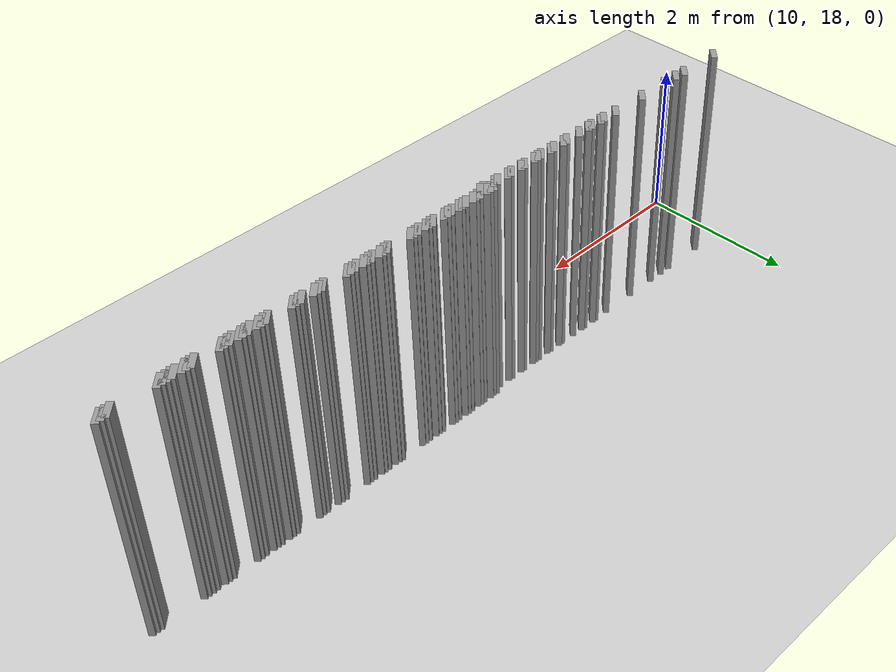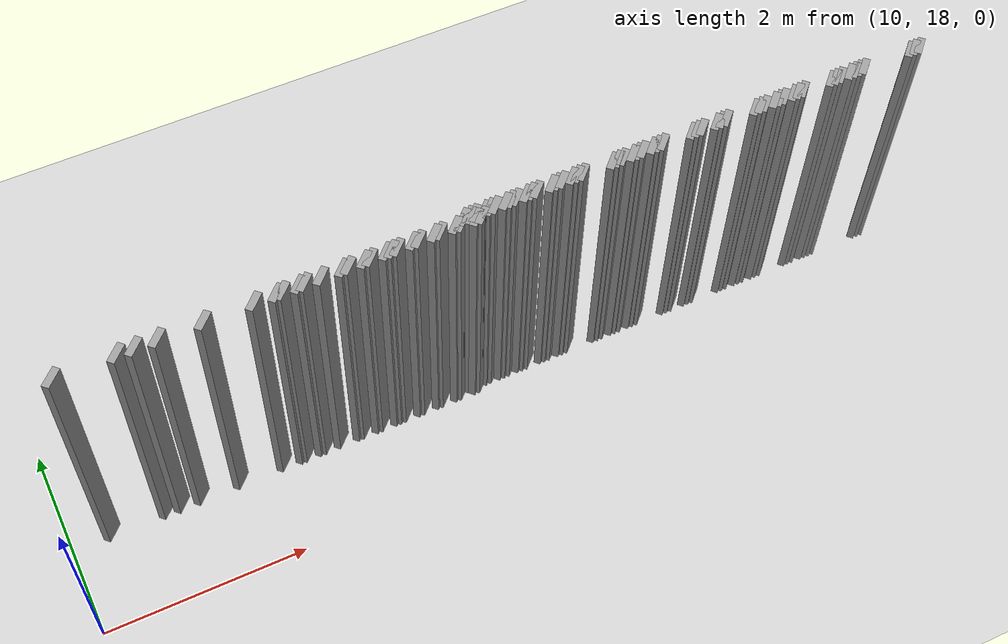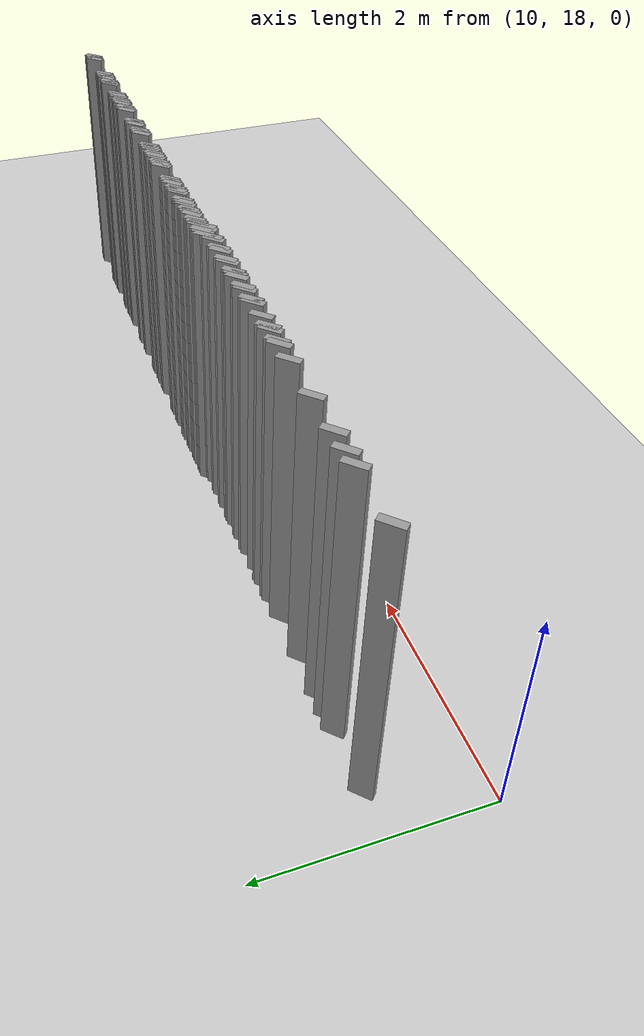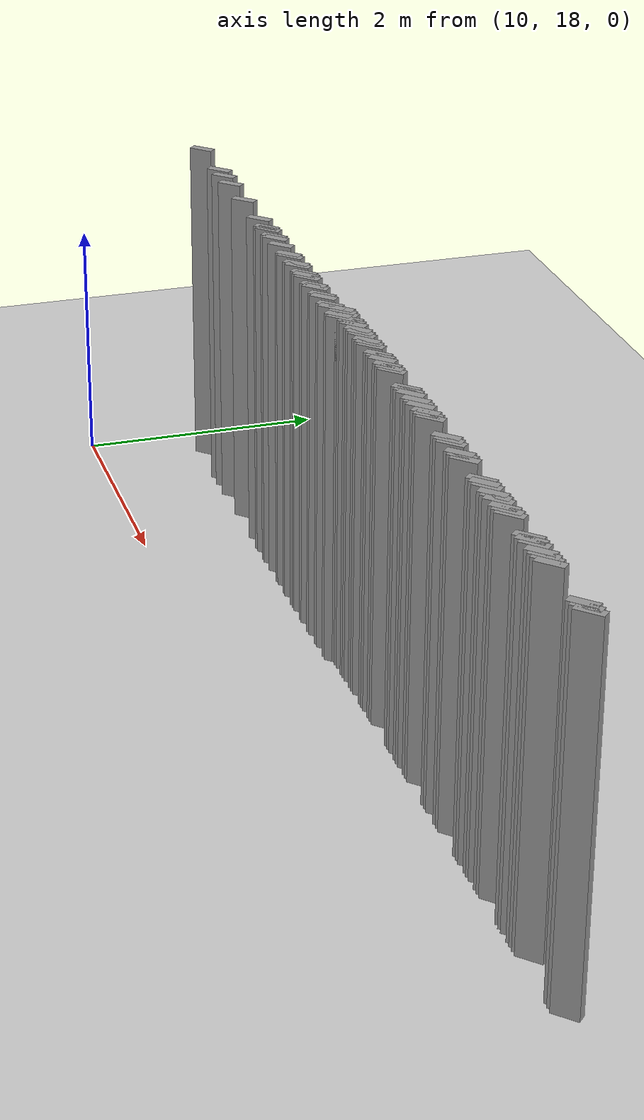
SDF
<sdf version="1.5">
 <world name="default">
  <include><uri>model://ground_plane</uri></include>
  <include><uri>model://sun</uri></include>
  <model name="grey_wall_79">
   <static>1</static>
   <link name="link">
    <pose>14.1 19.0  1.4 0 0 -0.785398163397</pose>
    <collision name="collision"><geometry><box><size>0.0707106781187 .2  2.8</size></box></geometry></collision>
    <visual name="visual">
     <cast_shadows>0</cast_shadows>
     <geometry><box><size>0.0707106781187 .2  2.8</size></box></geometry>
     <material>
      <script>
       <uri>model://grey_wall/materials/scripts</uri>
       <uri>model://grey_wall/materials/textures</uri>
       <name>vrc/grey_wall</name>
      </script>
     </material>
    </visual>
   </link>
  </model>
  <model name="grey_wall_80">
   <static>1</static>
   <link name="link">
    <pose>14.15 19.0  1.4 0 0 -0.785398163397</pose>
    <collision name="collision"><geometry><box><size>0.0707106781187 .2  2.8</size></box></geometry></collision>
    <visual name="visual">
     <cast_shadows>0</cast_shadows>
     <geometry><box><size>0.0707106781187 .2  2.8</size></box></geometry>
     <material>
      <script>
       <uri>model://grey_wall/materials/scripts</uri>
       <uri>model://grey_wall/materials/textures</uri>
       <name>vrc/grey_wall</name>
      </script>
     </material>
    </visual>
   </link>
  </model>
  <model name="grey_wall_81">
   <static>1</static>
   <link name="link">
    <pose>14.2 19.0  1.4 0 0 -0.785398163397</pose>
    <collision name="collision"><geometry><box><size>0.0707106781187 .2  2.8</size></box></geometry></collision>
    <visual name="visual">
     <cast_shadows>0</cast_shadows>
     <geometry><box><size>0.0707106781187 .2  2.8</size></box></geometry>
     <material>
      <script>
       <uri>model://grey_wall/materials/scripts</uri>
       <uri>model://grey_wall/materials/textures</uri>
       <name>vrc/grey_wall</name>
      </script>
     </material>
    </visual>
   </link>
  </model>
  <model name="grey_wall_82">
   <static>1</static>
   <link name="link">
    <pose>14.3 19.0  1.4 0 0 -0.785398163397</pose>
    <collision name="collision"><geometry><box><size>0.0707106781187 .2  2.8</size></box></geometry></collision>
    <visual name="visual">
     <cast_shadows>0</cast_shadows>
     <geometry><box><size>0.0707106781187 .2  2.8</size></box></geometry>
     <material>
      <script>
       <uri>model://grey_wall/materials/scripts</uri>
       <uri>model://grey_wall/materials/textures</uri>
       <name>vrc/grey_wall</name>
      </script>
     </material>
    </visual>
   </link>
  </model>
  <model name="grey_wall_83">
   <static>1</static>
   <link name="link">
    <pose>14.35 19.0  1.4 0 0 -0.785398163397</pose>
    <collision name="collision"><geometry><box><size>0.0707106781187 .2  2.8</size></box></geometry></collision>
    <visual name="visual">
     <cast_shadows>0</cast_shadows>
     <geometry><box><size>0.0707106781187 .2  2.8</size></box></geometry>
     <material>
      <script>
       <uri>model://grey_wall/materials/scripts</uri>
       <uri>model://grey_wall/materials/textures</uri>
       <name>vrc/grey_wall</name>
      </script>
     </material>
    </visual>
   </link>
  </model>
  <model name="grey_wall_84">
   <static>1</static>
   <link name="link">
    <pose>14.4 19.0  1.4 0 0 -0.785398163397</pose>
    <collision name="collision"><geometry><box><size>0.0707106781187 .2  2.8</size></box></geometry></collision>
    <visual name="visual">
     <cast_shadows>0</cast_shadows>
     <geometry><box><size>0.0707106781187 .2  2.8</size></box></geometry>
     <material>
      <script>
       <uri>model://grey_wall/materials/scripts</uri>
       <uri>model://grey_wall/materials/textures</uri>
       <name>vrc/grey_wall</name>
      </script>
     </material>
    </visual>
   </link>
  </model>
  <model name="grey_wall_85">
   <static>1</static>
   <link name="link">
    <pose>14.5 19.0  1.4 0 0 -0.785398163397</pose>
    <collision name="collision"><geometry><box><size>0.0707106781187 .2  2.8</size></box></geometry></collision>
    <visual name="visual">
     <cast_shadows>0</cast_shadows>
     <geometry><box><size>0.0707106781187 .2  2.8</size></box></geometry>
     <material>
      <script>
       <uri>model://grey_wall/materials/scripts</uri>
       <uri>model://grey_wall/materials/textures</uri>
       <name>vrc/grey_wall</name>
      </script>
     </material>
    </visual>
   </link>
  </model>
  <model name="grey_wall_86">
   <static>1</static>
   <link name="link">
    <pose>14.55 19.0  1.4 0 0 -0.785398163397</pose>
    <collision name="collision"><geometry><box><size>0.0707106781187 .2  2.8</size></box></geometry></collision>
    <visual name="visual">
     <cast_shadows>0</cast_shadows>
     <geometry><box><size>0.0707106781187 .2  2.8</size></box></geometry>
     <material>
      <script>
       <uri>model://grey_wall/materials/scripts</uri>
       <uri>model://grey_wall/materials/textures</uri>
       <name>vrc/grey_wall</name>
      </script>
     </material>
    </visual>
   </link>
  </model>
  <model name="grey_wall_87">
   <static>1</static>
   <link name="link">
    <pose>14.6 19.0  1.4 0 0 -0.785398163397</pose>
    <collision name="collision"><geometry><box><size>0.0707106781187 .2  2.8</size></box></geometry></collision>
    <visual name="visual">
     <cast_shadows>0</cast_shadows>
     <geometry><box><size>0.0707106781187 .2  2.8</size></box></geometry>
     <material>
      <script>
       <uri>model://grey_wall/materials/scripts</uri>
       <uri>model://grey_wall/materials/textures</uri>
       <name>vrc/grey_wall</name>
      </script>
     </material>
    </visual>
   </link>
  </model>
  <model name="grey_wall_88">
   <static>1</static>
   <link name="link">
    <pose>14.7 19.0  1.4 0 0 -0.785398163397</pose>
    <collision name="collision"><geometry><box><size>0.0707106781187 .2  2.8</size></box></geometry></collision>
    <visual name="visual">
     <cast_shadows>0</cast_shadows>
     <geometry><box><size>0.0707106781187 .2  2.8</size></box></geometry>
     <material>
      <script>
       <uri>model://grey_wall/materials/scripts</uri>
       <uri>model://grey_wall/materials/textures</uri>
       <name>vrc/grey_wall</name>
      </script>
     </material>
    </visual>
   </link>
  </model>
  <model name="grey_wall_89">
   <static>1</static>
   <link name="link">
    <pose>14.75 19.0  1.4 0 0 -0.785398163397</pose>
    <collision name="collision"><geometry><box><size>0.0707106781187 .2  2.8</size></box></geometry></collision>
    <visual name="visual">
     <cast_shadows>0</cast_shadows>
     <geometry><box><size>0.0707106781187 .2  2.8</size></box></geometry>
     <material>
      <script>
       <uri>model://grey_wall/materials/scripts</uri>
       <uri>model://grey_wall/materials/textures</uri>
       <name>vrc/grey_wall</name>
      </script>
     </material>
    </visual>
   </link>
  </model>
  <model name="grey_wall_90">
   <static>1</static>
   <link name="link">
    <pose>14.8 19.0  1.4 0 0 -0.785398163397</pose>
    <collision name="collision"><geometry><box><size>0.0707106781187 .2  2.8</size></box></geometry></collision>
    <visual name="visual">
     <cast_shadows>0</cast_shadows>
     <geometry><box><size>0.0707106781187 .2  2.8</size></box></geometry>
     <material>
      <script>
       <uri>model://grey_wall/materials/scripts</uri>
       <uri>model://grey_wall/materials/textures</uri>
       <name>vrc/grey_wall</name>
      </script>
     </material>
    </visual>
   </link>
  </model>
  <model name="grey_wall_91">
   <static>1</static>
   <link name="link">
    <pose>14.95 19.0  1.4 0 0 -0.785398163397</pose>
    <collision name="collision"><geometry><box><size>0.0707106781187 .2  2.8</size></box></geometry></collision>
    <visual name="visual">
     <cast_shadows>0</cast_shadows>
     <geometry><box><size>0.0707106781187 .2  2.8</size></box></geometry>
     <material>
      <script>
       <uri>model://grey_wall/materials/scripts</uri>
       <uri>model://grey_wall/materials/textures</uri>
       <name>vrc/grey_wall</name>
      </script>
     </material>
    </visual>
   </link>
  </model>
  <model name="grey_wall_92">
   <static>1</static>
   <link name="link">
    <pose>15.0 19.0  1.4 0 0 -0.785398163397</pose>
    <collision name="collision"><geometry><box><size>0.0707106781187 .2  2.8</size></box></geometry></collision>
    <visual name="visual">
     <cast_shadows>0</cast_shadows>
     <geometry><box><size>0.0707106781187 .2  2.8</size></box></geometry>
     <material>
      <script>
       <uri>model://grey_wall/materials/scripts</uri>
       <uri>model://grey_wall/materials/textures</uri>
       <name>vrc/grey_wall</name>
      </script>
     </material>
    </visual>
   </link>
  </model>
  <model name="grey_wall_93">
   <static>1</static>
   <link name="link">
    <pose>15.05 19.0  1.4 0 0 -0.785398163397</pose>
    <collision name="collision"><geometry><box><size>0.0707106781187 .2  2.8</size></box></geometry></collision>
    <visual name="visual">
     <cast_shadows>0</cast_shadows>
     <geometry><box><size>0.0707106781187 .2  2.8</size></box></geometry>
     <material>
      <script>
       <uri>model://grey_wall/materials/scripts</uri>
       <uri>model://grey_wall/materials/textures</uri>
       <name>vrc/grey_wall</name>
      </script>
     </material>
    </visual>
   </link>
  </model>
  <model name="grey_wall_94">
   <static>1</static>
   <link name="link">
    <pose>15.15 19.0  1.4 0 0 -0.785398163397</pose>
    <collision name="collision"><geometry><box><size>0.0707106781187 .2  2.8</size></box></geometry></collision>
    <visual name="visual">
     <cast_shadows>0</cast_shadows>
     <geometry><box><size>0.0707106781187 .2  2.8</size></box></geometry>
     <material>
      <script>
       <uri>model://grey_wall/materials/scripts</uri>
       <uri>model://grey_wall/materials/textures</uri>
       <name>vrc/grey_wall</name>
      </script>
     </material>
    </visual>
   </link>
  </model>
  <model name="grey_wall_95">
   <static>1</static>
   <link name="link">
    <pose>15.2 19.0  1.4 0 0 -0.785398163397</pose>
    <collision name="collision"><geometry><box><size>0.0707106781187 .2  2.8</size></box></geometry></collision>
    <visual name="visual">
     <cast_shadows>0</cast_shadows>
     <geometry><box><size>0.0707106781187 .2  2.8</size></box></geometry>
     <material>
      <script>
       <uri>model://grey_wall/materials/scripts</uri>
       <uri>model://grey_wall/materials/textures</uri>
       <name>vrc/grey_wall</name>
      </script>
     </material>
    </visual>
   </link>
  </model>
  <model name="grey_wall_96">
   <static>1</static>
   <link name="link">
    <pose>15.25 19.0  1.4 0 0 -0.785398163397</pose>
    <collision name="collision"><geometry><box><size>0.0707106781187 .2  2.8</size></box></geometry></collision>
    <visual name="visual">
     <cast_shadows>0</cast_shadows>
     <geometry><box><size>0.0707106781187 .2  2.8</size></box></geometry>
     <material>
      <script>
       <uri>model://grey_wall/materials/scripts</uri>
       <uri>model://grey_wall/materials/textures</uri>
       <name>vrc/grey_wall</name>
      </script>
     </material>
    </visual>
   </link>
  </model>
  <model name="grey_wall_97">
   <static>1</static>
   <link name="link">
    <pose>15.55 19.0  1.4 0 0 -0.785398163397</pose>
    <collision name="collision"><geometry><box><size>0.0707106781187 .2  2.8</size></box></geometry></collision>
    <visual name="visual">
     <cast_shadows>0</cast_shadows>
     <geometry><box><size>0.0707106781187 .2  2.8</size></box></geometry>
     <material>
      <script>
       <uri>model://grey_wall/materials/scripts</uri>
       <uri>model://grey_wall/materials/textures</uri>
       <name>vrc/grey_wall</name>
      </script>
     </material>
    </visual>
   </link>
  </model>
  <model name="grey_wall_98">
   <static>1</static>
   <link name="link">
    <pose>15.6 19.0  1.4 0 0 -0.785398163397</pose>
    <collision name="collision"><geometry><box><size>0.0707106781187 .2  2.8</size></box></geometry></collision>
    <visual name="visual">
     <cast_shadows>0</cast_shadows>
     <geometry><box><size>0.0707106781187 .2  2.8</size></box></geometry>
     <material>
      <script>
       <uri>model://grey_wall/materials/scripts</uri>
       <uri>model://grey_wall/materials/textures</uri>
       <name>vrc/grey_wall</name>
      </script>
     </material>
    </visual>
   </link>
  </model>
  <model name="grey_wall_99">
   <static>1</static>
   <link name="link">
    <pose>15.65 19.0  1.4 0 0 -0.785398163397</pose>
    <collision name="collision"><geometry><box><size>0.0707106781187 .2  2.8</size></box></geometry></collision>
    <visual name="visual">
     <cast_shadows>0</cast_shadows>
     <geometry><box><size>0.0707106781187 .2  2.8</size></box></geometry>
     <material>
      <script>
       <uri>model://grey_wall/materials/scripts</uri>
       <uri>model://grey_wall/materials/textures</uri>
       <name>vrc/grey_wall</name>
      </script>
     </material>
    </visual>
   </link>
  </model>
  <model name="grey_wall_100">
   <static>1</static>
   <link name="link">
    <pose>15.75 19.0  1.4 0 0 -0.785398163397</pose>
    <collision name="collision"><geometry><box><size>0.0707106781187 .2  2.8</size></box></geometry></collision>
    <visual name="visual">
     <cast_shadows>0</cast_shadows>
     <geometry><box><size>0.0707106781187 .2  2.8</size></box></geometry>
     <material>
      <script>
       <uri>model://grey_wall/materials/scripts</uri>
       <uri>model://grey_wall/materials/textures</uri>
       <name>vrc/grey_wall</name>
      </script>
     </material>
    </visual>
   </link>
  </model>
  <model name="grey_wall_101">
   <static>1</static>
   <link name="link">
    <pose>15.8 19.0  1.4 0 0 -0.785398163397</pose>
    <collision name="collision"><geometry><box><size>0.0707106781187 .2  2.8</size></box></geometry></collision>
    <visual name="visual">
     <cast_shadows>0</cast_shadows>
     <geometry><box><size>0.0707106781187 .2  2.8</size></box></geometry>
     <material>
      <script>
       <uri>model://grey_wall/materials/scripts</uri>
       <uri>model://grey_wall/materials/textures</uri>
       <name>vrc/grey_wall</name>
      </script>
     </material>
    </visual>
   </link>
  </model>
  <model name="grey_wall_102">
   <static>1</static>
   <link name="link">
    <pose>15.85 19.0  1.4 0 0 -0.785398163397</pose>
    <collision name="collision"><geometry><box><size>0.0707106781187 .2  2.8</size></box></geometry></collision>
    <visual name="visual">
     <cast_shadows>0</cast_shadows>
     <geometry><box><size>0.0707106781187 .2  2.8</size></box></geometry>
     <material>
      <script>
       <uri>model://grey_wall/materials/scripts</uri>
       <uri>model://grey_wall/materials/textures</uri>
       <name>vrc/grey_wall</name>
      </script>
     </material>
    </visual>
   </link>
  </model>
  <model name="grey_wall_103">
   <static>1</static>
   <link name="link">
    <pose>15.95 19.0  1.4 0 0 -0.785398163397</pose>
    <collision name="collision"><geometry><box><size>0.0707106781187 .2  2.8</size></box></geometry></collision>
    <visual name="visual">
     <cast_shadows>0</cast_shadows>
     <geometry><box><size>0.0707106781187 .2  2.8</size></box></geometry>
     <material>
      <script>
       <uri>model://grey_wall/materials/scripts</uri>
       <uri>model://grey_wall/materials/textures</uri>
       <name>vrc/grey_wall</name>
      </script>
     </material>
    </visual>
   </link>
  </model>
  <model name="grey_wall_104">
   <static>1</static>
   <link name="link">
    <pose>16.0 19.0  1.4 0 0 -0.785398163397</pose>
    <collision name="collision"><geometry><box><size>0.0707106781187 .2  2.8</size></box></geometry></collision>
    <visual name="visual">
     <cast_shadows>0</cast_shadows>
     <geometry><box><size>0.0707106781187 .2  2.8</size></box></geometry>
     <material>
      <script>
       <uri>model://grey_wall/materials/scripts</uri>
       <uri>model://grey_wall/materials/textures</uri>
       <name>vrc/grey_wall</name>
      </script>
     </material>
    </visual>
   </link>
  </model>
  <model name="grey_wall_105">
   <static>1</static>
   <link name="link">
    <pose>16.05 19.0  1.4 0 0 -0.785398163397</pose>
    <collision name="collision"><geometry><box><size>0.0707106781187 .2  2.8</size></box></geometry></collision>
    <visual name="visual">
     <cast_shadows>0</cast_shadows>
     <geometry><box><size>0.0707106781187 .2  2.8</size></box></geometry>
     <material>
      <script>
       <uri>model://grey_wall/materials/scripts</uri>
       <uri>model://grey_wall/materials/textures</uri>
       <name>vrc/grey_wall</name>
      </script>
     </material>
    </visual>
   </link>
  </model>
  <model name="grey_wall_106">
   <static>1</static>
   <link name="link">
    <pose>16.35 19.0  1.4 0 0 -0.785398163397</pose>
    <collision name="collision"><geometry><box><size>0.0707106781187 .2  2.8</size></box></geometry></collision>
    <visual name="visual">
     <cast_shadows>0</cast_shadows>
     <geometry><box><size>0.0707106781187 .2  2.8</size></box></geometry>
     <material>
      <script>
       <uri>model://grey_wall/materials/scripts</uri>
       <uri>model://grey_wall/materials/textures</uri>
       <name>vrc/grey_wall</name>
      </script>
     </material>
    </visual>
   </link>
  </model>
  <model name="grey_wall_107">
   <static>1</static>
   <link name="link">
    <pose>16.4 19.0  1.4 0 0 -0.785398163397</pose>
    <collision name="collision"><geometry><box><size>0.0707106781187 .2  2.8</size></box></geometry></collision>
    <visual name="visual">
     <cast_shadows>0</cast_shadows>
     <geometry><box><size>0.0707106781187 .2  2.8</size></box></geometry>
     <material>
      <script>
       <uri>model://grey_wall/materials/scripts</uri>
       <uri>model://grey_wall/materials/textures</uri>
       <name>vrc/grey_wall</name>
      </script>
     </material>
    </visual>
   </link>
  </model>
  <model name="grey_wall_108">
   <static>1</static>
   <link name="link">
    <pose>16.45 19.0  1.4 0 0 -0.785398163397</pose>
    <collision name="collision"><geometry><box><size>0.0707106781187 .2  2.8</size></box></geometry></collision>
    <visual name="visual">
     <cast_shadows>0</cast_shadows>
     <geometry><box><size>0.0707106781187 .2  2.8</size></box></geometry>
     <material>
      <script>
       <uri>model://grey_wall/materials/scripts</uri>
       <uri>model://grey_wall/materials/textures</uri>
       <name>vrc/grey_wall</name>
      </script>
     </material>
    </visual>
   </link>
  </model>
  <model name="grey_wall_109">
   <static>1</static>
   <link name="link">
    <pose>16.6 19.0  1.4 0 0 -0.785398163397</pose>
    <collision name="collision"><geometry><box><size>0.0707106781187 .2  2.8</size></box></geometry></collision>
    <visual name="visual">
     <cast_shadows>0</cast_shadows>
     <geometry><box><size>0.0707106781187 .2  2.8</size></box></geometry>
     <material>
      <script>
       <uri>model://grey_wall/materials/scripts</uri>
       <uri>model://grey_wall/materials/textures</uri>
       <name>vrc/grey_wall</name>
      </script>
     </material>
    </visual>
   </link>
  </model>
  <model name="grey_wall_110">
   <static>1</static>
   <link name="link">
    <pose>16.65 19.0  1.4 0 0 -0.785398163397</pose>
    <collision name="collision"><geometry><box><size>0.0707106781187 .2  2.8</size></box></geometry></collision>
    <visual name="visual">
     <cast_shadows>0</cast_shadows>
     <geometry><box><size>0.0707106781187 .2  2.8</size></box></geometry>
     <material>
      <script>
       <uri>model://grey_wall/materials/scripts</uri>
       <uri>model://grey_wall/materials/textures</uri>
       <name>vrc/grey_wall</name>
      </script>
     </material>
    </visual>
   </link>
  </model>
  <model name="grey_wall_111">
   <static>1</static>
   <link name="link">
    <pose>16.7 19.0  1.4 0 0 -0.785398163397</pose>
    <collision name="collision"><geometry><box><size>0.0707106781187 .2  2.8</size></box></geometry></collision>
    <visual name="visual">
     <cast_shadows>0</cast_shadows>
     <geometry><box><size>0.0707106781187 .2  2.8</size></box></geometry>
     <material>
      <script>
       <uri>model://grey_wall/materials/scripts</uri>
       <uri>model://grey_wall/materials/textures</uri>
       <name>vrc/grey_wall</name>
      </script>
     </material>
    </visual>
   </link>
  </model>
  <model name="grey_wall_112">
   <static>1</static>
   <link name="link">
    <pose>17.0 19.0  1.4 0 0 -0.785398163397</pose>
    <collision name="collision"><geometry><box><size>0.0707106781187 .2  2.8</size></box></geometry></collision>
    <visual name="visual">
     <cast_shadows>0</cast_shadows>
     <geometry><box><size>0.0707106781187 .2  2.8</size></box></geometry>
     <material>
      <script>
       <uri>model://grey_wall/materials/scripts</uri>
       <uri>model://grey_wall/materials/textures</uri>
       <name>vrc/grey_wall</name>
      </script>
     </material>
    </visual>
   </link>
  </model>
  <model name="grey_wall_113">
   <static>1</static>
   <link name="link">
    <pose>17.05 19.0  1.4 0 0 -0.785398163397</pose>
    <collision name="collision"><geometry><box><size>0.0707106781187 .2  2.8</size></box></geometry></collision>
    <visual name="visual">
     <cast_shadows>0</cast_shadows>
     <geometry><box><size>0.0707106781187 .2  2.8</size></box></geometry>
     <material>
      <script>
       <uri>model://grey_wall/materials/scripts</uri>
       <uri>model://grey_wall/materials/textures</uri>
       <name>vrc/grey_wall</name>
      </script>
     </material>
    </visual>
   </link>
  </model>
  <model name="grey_wall_114">
   <static>1</static>
   <link name="link">
    <pose>17.1 19.0  1.4 0 0 -0.785398163397</pose>
    <collision name="collision"><geometry><box><size>0.0707106781187 .2  2.8</size></box></geometry></collision>
    <visual name="visual">
     <cast_shadows>0</cast_shadows>
     <geometry><box><size>0.0707106781187 .2  2.8</size></box></geometry>
     <material>
      <script>
       <uri>model://grey_wall/materials/scripts</uri>
       <uri>model://grey_wall/materials/textures</uri>
       <name>vrc/grey_wall</name>
      </script>
     </material>
    </visual>
   </link>
  </model>
  <model name="grey_wall_115">
   <static>1</static>
   <link name="link">
    <pose>17.2 19.0  1.4 0 0 -0.785398163397</pose>
    <collision name="collision"><geometry><box><size>0.0707106781187 .2  2.8</size></box></geometry></collision>
    <visual name="visual">
     <cast_shadows>0</cast_shadows>
     <geometry><box><size>0.0707106781187 .2  2.8</size></box></geometry>
     <material>
      <script>
       <uri>model://grey_wall/materials/scripts</uri>
       <uri>model://grey_wall/materials/textures</uri>
       <name>vrc/grey_wall</name>
      </script>
     </material>
    </visual>
   </link>
  </model>
  <model name="grey_wall_116">
   <static>1</static>
   <link name="link">
    <pose>17.25 19.0  1.4 0 0 -0.785398163397</pose>
    <collision name="collision"><geometry><box><size>0.0707106781187 .2  2.8</size></box></geometry></collision>
    <visual name="visual">
     <cast_shadows>0</cast_shadows>
     <geometry><box><size>0.0707106781187 .2  2.8</size></box></geometry>
     <material>
      <script>
       <uri>model://grey_wall/materials/scripts</uri>
       <uri>model://grey_wall/materials/textures</uri>
       <name>vrc/grey_wall</name>
      </script>
     </material>
    </visual>
   </link>
  </model>
  <model name="grey_wall_117">
   <static>1</static>
   <link name="link">
    <pose>17.3 19.0  1.4 0 0 -0.785398163397</pose>
    <collision name="collision"><geometry><box><size>0.0707106781187 .2  2.8</size></box></geometry></collision>
    <visual name="visual">
     <cast_shadows>0</cast_shadows>
     <geometry><box><size>0.0707106781187 .2  2.8</size></box></geometry>
     <material>
      <script>
       <uri>model://grey_wall/materials/scripts</uri>
       <uri>model://grey_wall/materials/textures</uri>
       <name>vrc/grey_wall</name>
      </script>
     </material>
    </visual>
   </link>
  </model>
  <model name="grey_wall_118">
   <static>1</static>
   <link name="link">
    <pose>17.4 19.0  1.4 0 0 -0.785398163397</pose>
    <collision name="collision"><geometry><box><size>0.0707106781187 .2  2.8</size></box></geometry></collision>
    <visual name="visual">
     <cast_shadows>0</cast_shadows>
     <geometry><box><size>0.0707106781187 .2  2.8</size></box></geometry>
     <material>
      <script>
       <uri>model://grey_wall/materials/scripts</uri>
       <uri>model://grey_wall/materials/textures</uri>
       <name>vrc/grey_wall</name>
      </script>
     </material>
    </visual>
   </link>
  </model>
  <model name="grey_wall_119">
   <static>1</static>
   <link name="link">
    <pose>17.45 19.0  1.4 0 0 -0.785398163397</pose>
    <collision name="collision"><geometry><box><size>0.0707106781187 .2  2.8</size></box></geometry></collision>
    <visual name="visual">
     <cast_shadows>0</cast_shadows>
     <geometry><box><size>0.0707106781187 .2  2.8</size></box></geometry>
     <material>
      <script>
       <uri>model://grey_wall/materials/scripts</uri>
       <uri>model://grey_wall/materials/textures</uri>
       <name>vrc/grey_wall</name>
      </script>
     </material>
    </visual>
   </link>
  </model>
  <model name="grey_wall_120">
   <static>1</static>
   <link name="link">
    <pose>17.5 19.0  1.4 0 0 -0.785398163397</pose>
    <collision name="collision"><geometry><box><size>0.0707106781187 .2  2.8</size></box></geometry></collision>
    <visual name="visual">
     <cast_shadows>0</cast_shadows>
     <geometry><box><size>0.0707106781187 .2  2.8</size></box></geometry>
     <material>
      <script>
       <uri>model://grey_wall/materials/scripts</uri>
       <uri>model://grey_wall/materials/textures</uri>
       <name>vrc/grey_wall</name>
      </script>
     </material>
    </visual>
   </link>
  </model>
  <model name="grey_wall_121">
   <static>1</static>
   <link name="link">
    <pose>17.8 19.0  1.4 0 0 -0.785398163397</pose>
    <collision name="collision"><geometry><box><size>0.0707106781187 .2  2.8</size></box></geometry></collision>
    <visual name="visual">
     <cast_shadows>0</cast_shadows>
     <geometry><box><size>0.0707106781187 .2  2.8</size></box></geometry>
     <material>
      <script>
       <uri>model://grey_wall/materials/scripts</uri>
       <uri>model://grey_wall/materials/textures</uri>
       <name>vrc/grey_wall</name>
      </script>
     </material>
    </visual>
   </link>
  </model>
  <model name="grey_wall_122">
   <static>1</static>
   <link name="link">
    <pose>17.85 19.0  1.4 0 0 -0.785398163397</pose>
    <collision name="collision"><geometry><box><size>0.0707106781187 .2  2.8</size></box></geometry></collision>
    <visual name="visual">
     <cast_shadows>0</cast_shadows>
     <geometry><box><size>0.0707106781187 .2  2.8</size></box></geometry>
     <material>
      <script>
       <uri>model://grey_wall/materials/scripts</uri>
       <uri>model://grey_wall/materials/textures</uri>
       <name>vrc/grey_wall</name>
      </script>
     </material>
    </visual>
   </link>
  </model>
  <model name="grey_wall_123">
   <static>1</static>
   <link name="link">
    <pose>17.9 19.0  1.4 0 0 -0.785398163397</pose>
    <collision name="collision"><geometry><box><size>0.0707106781187 .2  2.8</size></box></geometry></collision>
    <visual name="visual">
     <cast_shadows>0</cast_shadows>
     <geometry><box><size>0.0707106781187 .2  2.8</size></box></geometry>
     <material>
      <script>
       <uri>model://grey_wall/materials/scripts</uri>
       <uri>model://grey_wall/materials/textures</uri>
       <name>vrc/grey_wall</name>
      </script>
     </material>
    </visual>
   </link>
  </model>
  <model name="grey_wall_124">
   <static>1</static>
   <link name="link">
    <pose>18.0 19.0  1.4 0 0 -0.785398163397</pose>
    <collision name="collision"><geometry><box><size>0.0707106781187 .2  2.8</size></box></geometry></collision>
    <visual name="visual">
     <cast_shadows>0</cast_shadows>
     <geometry><box><size>0.0707106781187 .2  2.8</size></box></geometry>
     <material>
      <script>
       <uri>model://grey_wall/materials/scripts</uri>
       <uri>model://grey_wall/materials/textures</uri>
       <name>vrc/grey_wall</name>
      </script>
     </material>
    </visual>
   </link>
  </model>
  <model name="grey_wall_125">
   <static>1</static>
   <link name="link">
    <pose>18.05 19.0  1.4 0 0 -0.785398163397</pose>
    <collision name="collision"><geometry><box><size>0.0707106781187 .2  2.8</size></box></geometry></collision>
    <visual name="visual">
     <cast_shadows>0</cast_shadows>
     <geometry><box><size>0.0707106781187 .2  2.8</size></box></geometry>
     <material>
      <script>
       <uri>model://grey_wall/materials/scripts</uri>
       <uri>model://grey_wall/materials/textures</uri>
       <name>vrc/grey_wall</name>
      </script>
     </material>
    </visual>
   </link>
  </model>
  <model name="grey_wall_126">
   <static>1</static>
   <link name="link">
    <pose>18.1 19.0  1.4 0 0 -0.785398163397</pose>
    <collision name="collision"><geometry><box><size>0.0707106781187 .2  2.8</size></box></geometry></collision>
    <visual name="visual">
     <cast_shadows>0</cast_shadows>
     <geometry><box><size>0.0707106781187 .2  2.8</size></box></geometry>
     <material>
      <script>
       <uri>model://grey_wall/materials/scripts</uri>
       <uri>model://grey_wall/materials/textures</uri>
       <name>vrc/grey_wall</name>
      </script>
     </material>
    </visual>
   </link>
  </model>
  <model name="grey_wall_127">
   <static>1</static>
   <link name="link">
    <pose>18.15 19.0  1.4 0 0 -0.785398163397</pose>
    <collision name="collision"><geometry><box><size>0.0707106781187 .2  2.8</size></box></geometry></collision>
    <visual name="visual">
     <cast_shadows>0</cast_shadows>
     <geometry><box><size>0.0707106781187 .2  2.8</size></box></geometry>
     <material>
      <script>
       <uri>model://grey_wall/materials/scripts</uri>
       <uri>model://grey_wall/materials/textures</uri>
       <name>vrc/grey_wall</name>
      </script>
     </material>
    </visual>
   </link>
  </model>
  <model name="grey_wall_128">
   <static>1</static>
   <link name="link">
    <pose>18.65 19.0  1.4 0 0 -0.785398163397</pose>
    <collision name="collision"><geometry><box><size>0.0707106781187 .2  2.8</size></box></geometry></collision>
    <visual name="visual">
     <cast_shadows>0</cast_shadows>
     <geometry><box><size>0.0707106781187 .2  2.8</size></box></geometry>
     <material>
      <script>
       <uri>model://grey_wall/materials/scripts</uri>
       <uri>model://grey_wall/materials/textures</uri>
       <name>vrc/grey_wall</name>
      </script>
     </material>
    </visual>
   </link>
  </model>
  <model name="grey_wall_129">
   <static>1</static>
   <link name="link">
    <pose>18.7 19.0  1.4 0 0 -0.785398163397</pose>
    <collision name="collision"><geometry><box><size>0.0707106781187 .2  2.8</size></box></geometry></collision>
    <visual name="visual">
     <cast_shadows>0</cast_shadows>
     <geometry><box><size>0.0707106781187 .2  2.8</size></box></geometry>
     <material>
      <script>
       <uri>model://grey_wall/materials/scripts</uri>
       <uri>model://grey_wall/materials/textures</uri>
       <name>vrc/grey_wall</name>
      </script>
     </material>
    </visual>
   </link>
  </model>
  <model name="grey_wall_130">
   <static>1</static>
   <link name="link">
    <pose>18.75 19.0  1.4 0 0 -0.785398163397</pose>
    <collision name="collision"><geometry><box><size>0.0707106781187 .2  2.8</size></box></geometry></collision>
    <visual name="visual">
     <cast_shadows>0</cast_shadows>
     <geometry><box><size>0.0707106781187 .2  2.8</size></box></geometry>
     <material>
      <script>
       <uri>model://grey_wall/materials/scripts</uri>
       <uri>model://grey_wall/materials/textures</uri>
       <name>vrc/grey_wall</name>
      </script>
     </material>
    </visual>
   </link>
  </model>
  <model name="grey_wall_131">
   <static>1</static>
   <link name="link">
    <pose>10.4 18.95  1.4 0 0 -0.785398163397</pose>
    <collision name="collision"><geometry><box><size>0.0707106781187 .2  2.8</size></box></geometry></collision>
    <visual name="visual">
     <cast_shadows>0</cast_shadows>
     <geometry><box><size>0.0707106781187 .2  2.8</size></box></geometry>
     <material>
      <script>
       <uri>model://grey_wall/materials/scripts</uri>
       <uri>model://grey_wall/materials/textures</uri>
       <name>vrc/grey_wall</name>
      </script>
     </material>
    </visual>
   </link>
  </model>
  <model name="grey_wall_132">
   <static>1</static>
   <link name="link">
    <pose>10.95 18.95  1.4 0 0 -0.785398163397</pose>
    <collision name="collision"><geometry><box><size>0.0707106781187 .2  2.8</size></box></geometry></collision>
    <visual name="visual">
     <cast_shadows>0</cast_shadows>
     <geometry><box><size>0.0707106781187 .2  2.8</size></box></geometry>
     <material>
      <script>
       <uri>model://grey_wall/materials/scripts</uri>
       <uri>model://grey_wall/materials/textures</uri>
       <name>vrc/grey_wall</name>
      </script>
     </material>
    </visual>
   </link>
  </model>
  <model name="grey_wall_133">
   <static>1</static>
   <link name="link">
    <pose>11.1 18.95  1.4 0 0 -0.785398163397</pose>
    <collision name="collision"><geometry><box><size>0.0707106781187 .2  2.8</size></box></geometry></collision>
    <visual name="visual">
     <cast_shadows>0</cast_shadows>
     <geometry><box><size>0.0707106781187 .2  2.8</size></box></geometry>
     <material>
      <script>
       <uri>model://grey_wall/materials/scripts</uri>
       <uri>model://grey_wall/materials/textures</uri>
       <name>vrc/grey_wall</name>
      </script>
     </material>
    </visual>
   </link>
  </model>
  <model name="grey_wall_134">
   <static>1</static>
   <link name="link">
    <pose>11.3 18.95  1.4 0 0 -0.785398163397</pose>
    <collision name="collision"><geometry><box><size>0.0707106781187 .2  2.8</size></box></geometry></collision>
    <visual name="visual">
     <cast_shadows>0</cast_shadows>
     <geometry><box><size>0.0707106781187 .2  2.8</size></box></geometry>
     <material>
      <script>
       <uri>model://grey_wall/materials/scripts</uri>
       <uri>model://grey_wall/materials/textures</uri>
       <name>vrc/grey_wall</name>
      </script>
     </material>
    </visual>
   </link>
  </model>
  <model name="grey_wall_135">
   <static>1</static>
   <link name="link">
    <pose>11.7 18.95  1.4 0 0 -0.785398163397</pose>
    <collision name="collision"><geometry><box><size>0.0707106781187 .2  2.8</size></box></geometry></collision>
    <visual name="visual">
     <cast_shadows>0</cast_shadows>
     <geometry><box><size>0.0707106781187 .2  2.8</size></box></geometry>
     <material>
      <script>
       <uri>model://grey_wall/materials/scripts</uri>
       <uri>model://grey_wall/materials/textures</uri>
       <name>vrc/grey_wall</name>
      </script>
     </material>
    </visual>
   </link>
  </model>
  <model name="grey_wall_136">
   <static>1</static>
   <link name="link">
    <pose>12.15 18.95  1.4 0 0 -0.785398163397</pose>
    <collision name="collision"><geometry><box><size>0.0707106781187 .2  2.8</size></box></geometry></collision>
    <visual name="visual">
     <cast_shadows>0</cast_shadows>
     <geometry><box><size>0.0707106781187 .2  2.8</size></box></geometry>
     <material>
      <script>
       <uri>model://grey_wall/materials/scripts</uri>
       <uri>model://grey_wall/materials/textures</uri>
       <name>vrc/grey_wall</name>
      </script>
     </material>
    </visual>
   </link>
  </model>
  <model name="grey_wall_137">
   <static>1</static>
   <link name="link">
    <pose>12.35 18.95  1.4 0 0 -0.785398163397</pose>
    <collision name="collision"><geometry><box><size>0.0707106781187 .2  2.8</size></box></geometry></collision>
    <visual name="visual">
     <cast_shadows>0</cast_shadows>
     <geometry><box><size>0.0707106781187 .2  2.8</size></box></geometry>
     <material>
      <script>
       <uri>model://grey_wall/materials/scripts</uri>
       <uri>model://grey_wall/materials/textures</uri>
       <name>vrc/grey_wall</name>
      </script>
     </material>
    </visual>
   </link>
  </model>
  <model name="grey_wall_138">
   <static>1</static>
   <link name="link">
    <pose>12.4 18.95  1.4 0 0 -0.785398163397</pose>
    <collision name="collision"><geometry><box><size>0.0707106781187 .2  2.8</size></box></geometry></collision>
    <visual name="visual">
     <cast_shadows>0</cast_shadows>
     <geometry><box><size>0.0707106781187 .2  2.8</size></box></geometry>
     <material>
      <script>
       <uri>model://grey_wall/materials/scripts</uri>
       <uri>model://grey_wall/materials/textures</uri>
       <name>vrc/grey_wall</name>
      </script>
     </material>
    </visual>
   </link>
  </model>
  <model name="grey_wall_139">
   <static>1</static>
   <link name="link">
    <pose>12.55 18.95  1.4 0 0 -0.785398163397</pose>
    <collision name="collision"><geometry><box><size>0.0707106781187 .2  2.8</size></box></geometry></collision>
    <visual name="visual">
     <cast_shadows>0</cast_shadows>
     <geometry><box><size>0.0707106781187 .2  2.8</size></box></geometry>
     <material>
      <script>
       <uri>model://grey_wall/materials/scripts</uri>
       <uri>model://grey_wall/materials/textures</uri>
       <name>vrc/grey_wall</name>
      </script>
     </material>
    </visual>
   </link>
  </model>
  <model name="grey_wall_140">
   <static>1</static>
   <link name="link">
    <pose>12.6 18.95  1.4 0 0 -0.785398163397</pose>
    <collision name="collision"><geometry><box><size>0.0707106781187 .2  2.8</size></box></geometry></collision>
    <visual name="visual">
     <cast_shadows>0</cast_shadows>
     <geometry><box><size>0.0707106781187 .2  2.8</size></box></geometry>
     <material>
      <script>
       <uri>model://grey_wall/materials/scripts</uri>
       <uri>model://grey_wall/materials/textures</uri>
       <name>vrc/grey_wall</name>
      </script>
     </material>
    </visual>
   </link>
  </model>
  <model name="grey_wall_141">
   <static>1</static>
   <link name="link">
    <pose>12.75 18.95  1.4 0 0 -0.785398163397</pose>
    <collision name="collision"><geometry><box><size>0.0707106781187 .2  2.8</size></box></geometry></collision>
    <visual name="visual">
     <cast_shadows>0</cast_shadows>
     <geometry><box><size>0.0707106781187 .2  2.8</size></box></geometry>
     <material>
      <script>
       <uri>model://grey_wall/materials/scripts</uri>
       <uri>model://grey_wall/materials/textures</uri>
       <name>vrc/grey_wall</name>
      </script>
     </material>
    </visual>
   </link>
  </model>
  <model name="grey_wall_142">
   <static>1</static>
   <link name="link">
    <pose>12.95 18.95  1.4 0 0 -0.785398163397</pose>
    <collision name="collision"><geometry><box><size>0.0707106781187 .2  2.8</size></box></geometry></collision>
    <visual name="visual">
     <cast_shadows>0</cast_shadows>
     <geometry><box><size>0.0707106781187 .2  2.8</size></box></geometry>
     <material>
      <script>
       <uri>model://grey_wall/materials/scripts</uri>
       <uri>model://grey_wall/materials/textures</uri>
       <name>vrc/grey_wall</name>
      </script>
     </material>
    </visual>
   </link>
  </model>
  <model name="grey_wall_143">
   <static>1</static>
   <link name="link">
    <pose>13.0 18.95  1.4 0 0 -0.785398163397</pose>
    <collision name="collision"><geometry><box><size>0.0707106781187 .2  2.8</size></box></geometry></collision>
    <visual name="visual">
     <cast_shadows>0</cast_shadows>
     <geometry><box><size>0.0707106781187 .2  2.8</size></box></geometry>
     <material>
      <script>
       <uri>model://grey_wall/materials/scripts</uri>
       <uri>model://grey_wall/materials/textures</uri>
       <name>vrc/grey_wall</name>
      </script>
     </material>
    </visual>
   </link>
  </model>
  <model name="grey_wall_144">
   <static>1</static>
   <link name="link">
    <pose>13.15 18.95  1.4 0 0 -0.785398163397</pose>
    <collision name="collision"><geometry><box><size>0.0707106781187 .2  2.8</size></box></geometry></collision>
    <visual name="visual">
     <cast_shadows>0</cast_shadows>
     <geometry><box><size>0.0707106781187 .2  2.8</size></box></geometry>
     <material>
      <script>
       <uri>model://grey_wall/materials/scripts</uri>
       <uri>model://grey_wall/materials/textures</uri>
       <name>vrc/grey_wall</name>
      </script>
     </material>
    </visual>
   </link>
  </model>
  <model name="grey_wall_145">
   <static>1</static>
   <link name="link">
    <pose>13.2 18.95  1.4 0 0 -0.785398163397</pose>
    <collision name="collision"><geometry><box><size>0.0707106781187 .2  2.8</size></box></geometry></collision>
    <visual name="visual">
     <cast_shadows>0</cast_shadows>
     <geometry><box><size>0.0707106781187 .2  2.8</size></box></geometry>
     <material>
      <script>
       <uri>model://grey_wall/materials/scripts</uri>
       <uri>model://grey_wall/materials/textures</uri>
       <name>vrc/grey_wall</name>
      </script>
     </material>
    </visual>
   </link>
  </model>
  <model name="grey_wall_146">
   <static>1</static>
   <link name="link">
    <pose>13.35 18.95  1.4 0 0 -0.785398163397</pose>
    <collision name="collision"><geometry><box><size>0.0707106781187 .2  2.8</size></box></geometry></collision>
    <visual name="visual">
     <cast_shadows>0</cast_shadows>
     <geometry><box><size>0.0707106781187 .2  2.8</size></box></geometry>
     <material>
      <script>
       <uri>model://grey_wall/materials/scripts</uri>
       <uri>model://grey_wall/materials/textures</uri>
       <name>vrc/grey_wall</name>
      </script>
     </material>
    </visual>
   </link>
  </model>
  <model name="grey_wall_147">
   <static>1</static>
   <link name="link">
    <pose>13.4 18.95  1.4 0 0 -0.785398163397</pose>
    <collision name="collision"><geometry><box><size>0.0707106781187 .2  2.8</size></box></geometry></collision>
    <visual name="visual">
     <cast_shadows>0</cast_shadows>
     <geometry><box><size>0.0707106781187 .2  2.8</size></box></geometry>
     <material>
      <script>
       <uri>model://grey_wall/materials/scripts</uri>
       <uri>model://grey_wall/materials/textures</uri>
       <name>vrc/grey_wall</name>
      </script>
     </material>
    </visual>
   </link>
  </model>
  <model name="grey_wall_148">
   <static>1</static>
   <link name="link">
    <pose>13.45 18.95  1.4 0 0 -0.785398163397</pose>
    <collision name="collision"><geometry><box><size>0.0707106781187 .2  2.8</size></box></geometry></collision>
    <visual name="visual">
     <cast_shadows>0</cast_shadows>
     <geometry><box><size>0.0707106781187 .2  2.8</size></box></geometry>
     <material>
      <script>
       <uri>model://grey_wall/materials/scripts</uri>
       <uri>model://grey_wall/materials/textures</uri>
       <name>vrc/grey_wall</name>
      </script>
     </material>
    </visual>
   </link>
  </model>
  <model name="grey_wall_149">
   <static>1</static>
   <link name="link">
    <pose>13.6 18.95  1.4 0 0 -0.785398163397</pose>
    <collision name="collision"><geometry><box><size>0.0707106781187 .2  2.8</size></box></geometry></collision>
    <visual name="visual">
     <cast_shadows>0</cast_shadows>
     <geometry><box><size>0.0707106781187 .2  2.8</size></box></geometry>
     <material>
      <script>
       <uri>model://grey_wall/materials/scripts</uri>
       <uri>model://grey_wall/materials/textures</uri>
       <name>vrc/grey_wall</name>
      </script>
     </material>
    </visual>
   </link>
  </model>
  <model name="grey_wall_150">
   <static>1</static>
   <link name="link">
    <pose>13.65 18.95  1.4 0 0 -0.785398163397</pose>
    <collision name="collision"><geometry><box><size>0.0707106781187 .2  2.8</size></box></geometry></collision>
    <visual name="visual">
     <cast_shadows>0</cast_shadows>
     <geometry><box><size>0.0707106781187 .2  2.8</size></box></geometry>
     <material>
      <script>
       <uri>model://grey_wall/materials/scripts</uri>
       <uri>model://grey_wall/materials/textures</uri>
       <name>vrc/grey_wall</name>
      </script>
     </material>
    </visual>
   </link>
  </model>
  <model name="grey_wall_151">
   <static>1</static>
   <link name="link">
    <pose>13.8 18.95  1.4 0 0 -0.785398163397</pose>
    <collision name="collision"><geometry><box><size>0.0707106781187 .2  2.8</size></box></geometry></collision>
    <visual name="visual">
     <cast_shadows>0</cast_shadows>
     <geometry><box><size>0.0707106781187 .2  2.8</size></box></geometry>
     <material>
      <script>
       <uri>model://grey_wall/materials/scripts</uri>
       <uri>model://grey_wall/materials/textures</uri>
       <name>vrc/grey_wall</name>
      </script>
     </material>
    </visual>
   </link>
  </model>
  <model name="grey_wall_152">
   <static>1</static>
   <link name="link">
    <pose>13.85 18.95  1.4 0 0 -0.785398163397</pose>
    <collision name="collision"><geometry><box><size>0.0707106781187 .2  2.8</size></box></geometry></collision>
    <visual name="visual">
     <cast_shadows>0</cast_shadows>
     <geometry><box><size>0.0707106781187 .2  2.8</size></box></geometry>
     <material>
      <script>
       <uri>model://grey_wall/materials/scripts</uri>
       <uri>model://grey_wall/materials/textures</uri>
       <name>vrc/grey_wall</name>
      </script>
     </material>
    </visual>
   </link>
  </model>
  <model name="grey_wall_153">
   <static>1</static>
   <link name="link">
    <pose>14.0 18.95  1.4 0 0 -0.785398163397</pose>
    <collision name="collision"><geometry><box><size>0.0707106781187 .2  2.8</size></box></geometry></collision>
    <visual name="visual">
     <cast_shadows>0</cast_shadows>
     <geometry><box><size>0.0707106781187 .2  2.8</size></box></geometry>
     <material>
      <script>
       <uri>model://grey_wall/materials/scripts</uri>
       <uri>model://grey_wall/materials/textures</uri>
       <name>vrc/grey_wall</name>
      </script>
     </material>
    </visual>
   </link>
  </model>
  <model name="grey_wall_154">
   <static>1</static>
   <link name="link">
    <pose>14.05 18.95  1.4 0 0 -0.785398163397</pose>
    <collision name="collision"><geometry><box><size>0.0707106781187 .2  2.8</size></box></geometry></collision>
    <visual name="visual">
     <cast_shadows>0</cast_shadows>
     <geometry><box><size>0.0707106781187 .2  2.8</size></box></geometry>
     <material>
      <script>
       <uri>model://grey_wall/materials/scripts</uri>
       <uri>model://grey_wall/materials/textures</uri>
       <name>vrc/grey_wall</name>
      </script>
     </material>
    </visual>
   </link>
  </model>
  <model name="grey_wall_155">
   <static>1</static>
   <link name="link">
    <pose>14.2 18.95  1.4 0 0 -0.785398163397</pose>
    <collision name="collision"><geometry><box><size>0.0707106781187 .2  2.8</size></box></geometry></collision>
    <visual name="visual">
     <cast_shadows>0</cast_shadows>
     <geometry><box><size>0.0707106781187 .2  2.8</size></box></geometry>
     <material>
      <script>
       <uri>model://grey_wall/materials/scripts</uri>
       <uri>model://grey_wall/materials/textures</uri>
       <name>vrc/grey_wall</name>
      </script>
     </material>
    </visual>
   </link>
  </model>
  <model name="grey_wall_156">
   <static>1</static>
   <link name="link">
    <pose>14.25 18.95  1.4 0 0 -0.785398163397</pose>
    <collision name="collision"><geometry><box><size>0.0707106781187 .2  2.8</size></box></geometry></collision>
    <visual name="visual">
     <cast_shadows>0</cast_shadows>
     <geometry><box><size>0.0707106781187 .2  2.8</size></box></geometry>
     <material>
      <script>
       <uri>model://grey_wall/materials/scripts</uri>
       <uri>model://grey_wall/materials/textures</uri>
       <name>vrc/grey_wall</name>
      </script>
     </material>
    </visual>
   </link>
  </model>
 </world>
</sdf>
